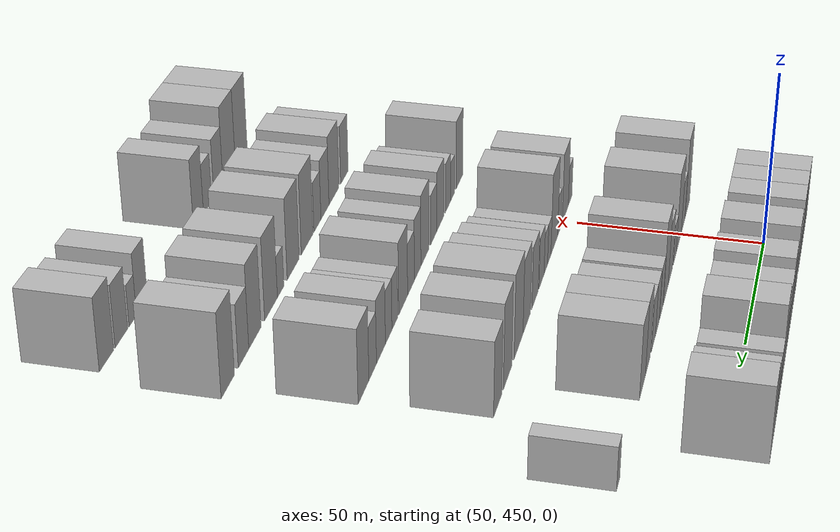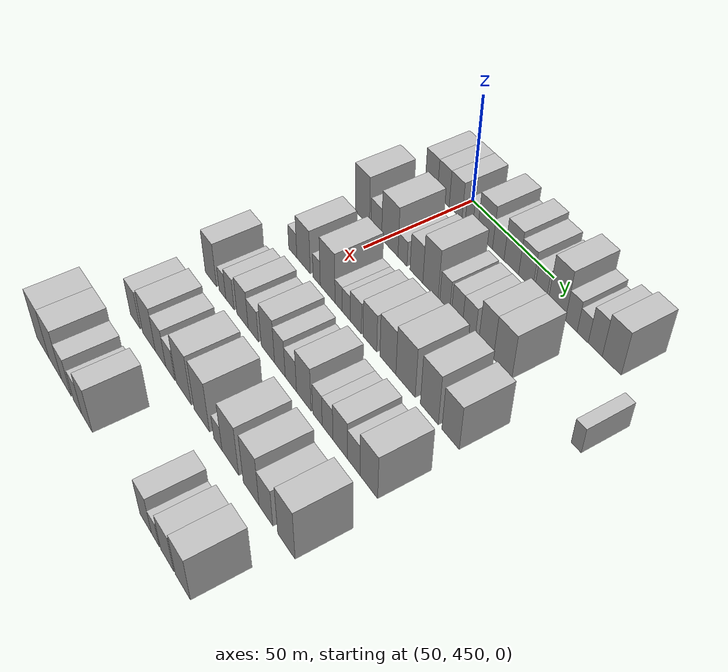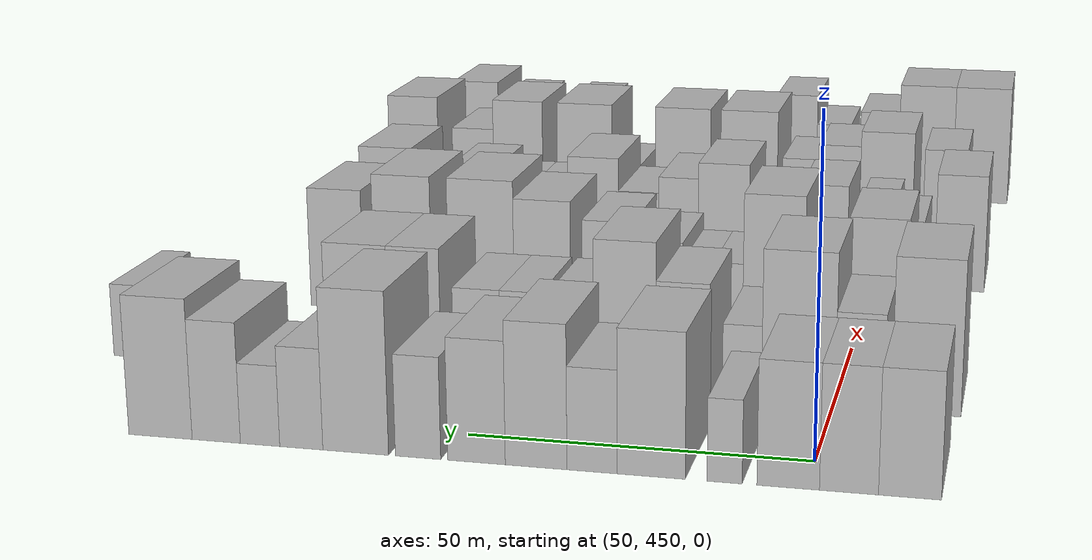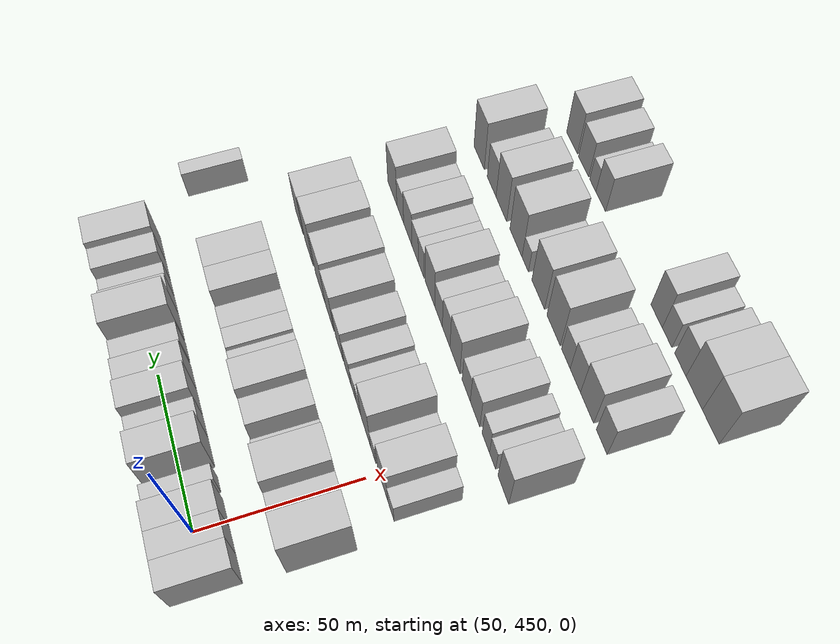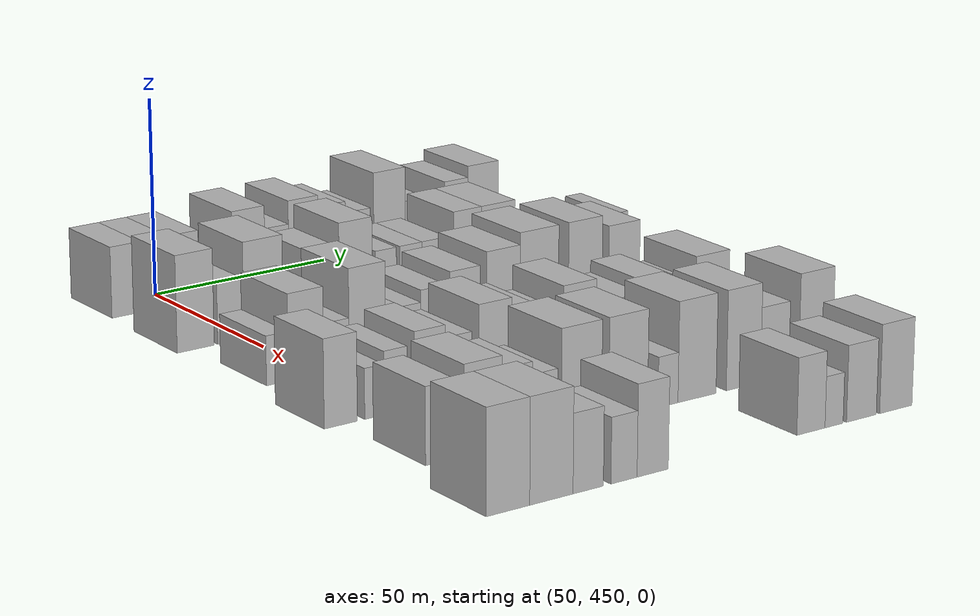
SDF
<sdf version="1.6">
 <world name="default">
  <model name="building_114">
   <static>1</static>
   <pose>50.0000 436.1076 0 0.000000 0.000000 0.000000</pose>
   <link name="link">
    <pose>0 0 9.00 0 0 0</pose>
    <collision name="collision"><geometry><box><size>20.0000 8.3401 18.0000</size></box></geometry></collision>
    <visual name="visual">
     <cast_shadows>0</cast_shadows>
     <geometry><box><size>20.0000 8.3401 18.0000</size></box></geometry>
     <material>
      <script>
       <uri>model://HANNAS_wall/materials/scripts</uri>
       <uri>model://HANNAS_wall/materials/textures</uri>
       <name>vrc/HANNAS_wall</name>
      </script>
     </material>
    </visual>
   </link>
  </model>
  <model name="building_115">
   <static>1</static>
   <pose>50.0000 444.2249 0 0.000000 0.000000 0.000000</pose>
   <link name="link">
    <pose>0 0 9.00 0 0 0</pose>
    <collision name="collision"><geometry><box><size>20.0000 7.8946 18.0000</size></box></geometry></collision>
    <visual name="visual">
     <cast_shadows>0</cast_shadows>
     <geometry><box><size>20.0000 7.8946 18.0000</size></box></geometry>
     <material>
      <script>
       <uri>model://HANNAS_wall/materials/scripts</uri>
       <uri>model://HANNAS_wall/materials/textures</uri>
       <name>vrc/HANNAS_wall</name>
      </script>
     </material>
    </visual>
   </link>
  </model>
  <model name="building_116">
   <static>1</static>
   <pose>50.0000 452.4045 0 0.000000 0.000000 0.000000</pose>
   <link name="link">
    <pose>0 0 9.00 0 0 0</pose>
    <collision name="collision"><geometry><box><size>20.0000 8.4645 18.0000</size></box></geometry></collision>
    <visual name="visual">
     <cast_shadows>0</cast_shadows>
     <geometry><box><size>20.0000 8.4645 18.0000</size></box></geometry>
     <material>
      <script>
       <uri>model://HANNAS_wall/materials/scripts</uri>
       <uri>model://HANNAS_wall/materials/textures</uri>
       <name>vrc/HANNAS_wall</name>
      </script>
     </material>
    </visual>
   </link>
  </model>
  <model name="building_117">
   <static>1</static>
   <pose>50.0000 461.0468 0 0.000000 0.000000 0.000000</pose>
   <link name="link">
    <pose>0 0 6.00 0 0 0</pose>
    <collision name="collision"><geometry><box><size>20.0000 4.8200 12.0000</size></box></geometry></collision>
    <visual name="visual">
     <cast_shadows>0</cast_shadows>
     <geometry><box><size>20.0000 4.8200 12.0000</size></box></geometry>
     <material>
      <script>
       <uri>model://HANNAS_wall/materials/scripts</uri>
       <uri>model://HANNAS_wall/materials/textures</uri>
       <name>vrc/HANNAS_wall</name>
      </script>
     </material>
    </visual>
   </link>
  </model>
  <model name="building_118">
   <static>1</static>
   <pose>50.0000 471.2063 0 0.000000 0.000000 0.000000</pose>
   <link name="link">
    <pose>0 0 10.50 0 0 0</pose>
    <collision name="collision"><geometry><box><size>20.0000 9.4991 21.0000</size></box></geometry></collision>
    <visual name="visual">
     <cast_shadows>0</cast_shadows>
     <geometry><box><size>20.0000 9.4991 21.0000</size></box></geometry>
     <material>
      <script>
       <uri>model://HANNAS_wall/materials/scripts</uri>
       <uri>model://HANNAS_wall/materials/textures</uri>
       <name>vrc/HANNAS_wall</name>
      </script>
     </material>
    </visual>
   </link>
  </model>
  <model name="building_119">
   <static>1</static>
   <pose>50.0000 479.4716 0 0.000000 0.000000 0.000000</pose>
   <link name="link">
    <pose>0 0 7.50 0 0 0</pose>
    <collision name="collision"><geometry><box><size>20.0000 7.0316 15.0000</size></box></geometry></collision>
    <visual name="visual">
     <cast_shadows>0</cast_shadows>
     <geometry><box><size>20.0000 7.0316 15.0000</size></box></geometry>
     <material>
      <script>
       <uri>model://HANNAS_wall/materials/scripts</uri>
       <uri>model://HANNAS_wall/materials/textures</uri>
       <name>vrc/HANNAS_wall</name>
      </script>
     </material>
    </visual>
   </link>
  </model>
  <model name="building_120">
   <static>1</static>
   <pose>50.0000 487.3761 0 0.000000 0.000000 0.000000</pose>
   <link name="link">
    <pose>0 0 10.50 0 0 0</pose>
    <collision name="collision"><geometry><box><size>20.0000 8.7772 21.0000</size></box></geometry></collision>
    <visual name="visual">
     <cast_shadows>0</cast_shadows>
     <geometry><box><size>20.0000 8.7772 21.0000</size></box></geometry>
     <material>
      <script>
       <uri>model://HANNAS_wall/materials/scripts</uri>
       <uri>model://HANNAS_wall/materials/textures</uri>
       <name>vrc/HANNAS_wall</name>
      </script>
     </material>
    </visual>
   </link>
  </model>
  <model name="building_121">
   <static>1</static>
   <pose>50.0000 495.9173 0 0.000000 0.000000 0.000000</pose>
   <link name="link">
    <pose>0 0 9.00 0 0 0</pose>
    <collision name="collision"><geometry><box><size>20.0000 8.3053 18.0000</size></box></geometry></collision>
    <visual name="visual">
     <cast_shadows>0</cast_shadows>
     <geometry><box><size>20.0000 8.3053 18.0000</size></box></geometry>
     <material>
      <script>
       <uri>model://HANNAS_wall/materials/scripts</uri>
       <uri>model://HANNAS_wall/materials/textures</uri>
       <name>vrc/HANNAS_wall</name>
      </script>
     </material>
    </visual>
   </link>
  </model>
  <model name="building_122">
   <static>1</static>
   <pose>50.0000 504.3802 0 0.000000 0.000000 0.000000</pose>
   <link name="link">
    <pose>0 0 7.50 0 0 0</pose>
    <collision name="collision"><geometry><box><size>20.0000 6.6206 15.0000</size></box></geometry></collision>
    <visual name="visual">
     <cast_shadows>0</cast_shadows>
     <geometry><box><size>20.0000 6.6206 15.0000</size></box></geometry>
     <material>
      <script>
       <uri>model://HANNAS_wall/materials/scripts</uri>
       <uri>model://HANNAS_wall/materials/textures</uri>
       <name>vrc/HANNAS_wall</name>
      </script>
     </material>
    </visual>
   </link>
  </model>
  <model name="building_123">
   <static>1</static>
   <pose>50.0000 513.5426 0 0.000000 0.000000 0.000000</pose>
   <link name="link">
    <pose>0 0 12.00 0 0 0</pose>
    <collision name="collision"><geometry><box><size>20.0000 9.7042 24.0000</size></box></geometry></collision>
    <visual name="visual">
     <cast_shadows>0</cast_shadows>
     <geometry><box><size>20.0000 9.7042 24.0000</size></box></geometry>
     <material>
      <script>
       <uri>model://HANNAS_wall/materials/scripts</uri>
       <uri>model://HANNAS_wall/materials/textures</uri>
       <name>vrc/HANNAS_wall</name>
      </script>
     </material>
    </visual>
   </link>
  </model>
  <model name="building_124">
   <static>1</static>
   <pose>50.0000 521.6145 0 0.000000 0.000000 0.000000</pose>
   <link name="link">
    <pose>0 0 7.50 0 0 0</pose>
    <collision name="collision"><geometry><box><size>20.0000 6.4395 15.0000</size></box></geometry></collision>
    <visual name="visual">
     <cast_shadows>0</cast_shadows>
     <geometry><box><size>20.0000 6.4395 15.0000</size></box></geometry>
     <material>
      <script>
       <uri>model://HANNAS_wall/materials/scripts</uri>
       <uri>model://HANNAS_wall/materials/textures</uri>
       <name>vrc/HANNAS_wall</name>
      </script>
     </material>
    </visual>
   </link>
  </model>
  <model name="building_125">
   <static>1</static>
   <pose>50.0000 527.8035 0 0.000000 0.000000 0.000000</pose>
   <link name="link">
    <pose>0 0 6.00 0 0 0</pose>
    <collision name="collision"><geometry><box><size>20.0000 5.9385 12.0000</size></box></geometry></collision>
    <visual name="visual">
     <cast_shadows>0</cast_shadows>
     <geometry><box><size>20.0000 5.9385 12.0000</size></box></geometry>
     <material>
      <script>
       <uri>model://HANNAS_wall/materials/scripts</uri>
       <uri>model://HANNAS_wall/materials/textures</uri>
       <name>vrc/HANNAS_wall</name>
      </script>
     </material>
    </visual>
   </link>
  </model>
  <model name="building_126">
   <static>1</static>
   <pose>50.0000 534.4407 0 0.000000 0.000000 0.000000</pose>
   <link name="link">
    <pose>0 0 9.00 0 0 0</pose>
    <collision name="collision"><geometry><box><size>20.0000 7.3359 18.0000</size></box></geometry></collision>
    <visual name="visual">
     <cast_shadows>0</cast_shadows>
     <geometry><box><size>20.0000 7.3359 18.0000</size></box></geometry>
     <material>
      <script>
       <uri>model://HANNAS_wall/materials/scripts</uri>
       <uri>model://HANNAS_wall/materials/textures</uri>
       <name>vrc/HANNAS_wall</name>
      </script>
     </material>
    </visual>
   </link>
  </model>
  <model name="building_127">
   <static>1</static>
   <pose>50.0000 542.9743 0 0.000000 0.000000 0.000000</pose>
   <link name="link">
    <pose>0 0 10.50 0 0 0</pose>
    <collision name="collision"><geometry><box><size>20.0000 9.7314 21.0000</size></box></geometry></collision>
    <visual name="visual">
     <cast_shadows>0</cast_shadows>
     <geometry><box><size>20.0000 9.7314 21.0000</size></box></geometry>
     <material>
      <script>
       <uri>model://HANNAS_wall/materials/scripts</uri>
       <uri>model://HANNAS_wall/materials/textures</uri>
       <name>vrc/HANNAS_wall</name>
      </script>
     </material>
    </visual>
   </link>
  </model>
  <model name="building_240">
   <static>1</static>
   <pose>82.0000 436.1802 0 0.000000 0.000000 0.000000</pose>
   <link name="link">
    <pose>0 0 12.00 0 0 0</pose>
    <collision name="collision"><geometry><box><size>20.0000 10.2182 24.0000</size></box></geometry></collision>
    <visual name="visual">
     <cast_shadows>0</cast_shadows>
     <geometry><box><size>20.0000 10.2182 24.0000</size></box></geometry>
     <material>
      <script>
       <uri>model://HANNAS_wall/materials/scripts</uri>
       <uri>model://HANNAS_wall/materials/textures</uri>
       <name>vrc/HANNAS_wall</name>
      </script>
     </material>
    </visual>
   </link>
  </model>
  <model name="building_241">
   <static>1</static>
   <pose>82.0000 445.9723 0 0.000000 0.000000 0.000000</pose>
   <link name="link">
    <pose>0 0 7.50 0 0 0</pose>
    <collision name="collision"><geometry><box><size>20.0000 7.3659 15.0000</size></box></geometry></collision>
    <visual name="visual">
     <cast_shadows>0</cast_shadows>
     <geometry><box><size>20.0000 7.3659 15.0000</size></box></geometry>
     <material>
      <script>
       <uri>model://HANNAS_wall/materials/scripts</uri>
       <uri>model://HANNAS_wall/materials/textures</uri>
       <name>vrc/HANNAS_wall</name>
      </script>
     </material>
    </visual>
   </link>
  </model>
  <model name="building_242">
   <static>1</static>
   <pose>82.0000 455.1974 0 0.000000 0.000000 0.000000</pose>
   <link name="link">
    <pose>0 0 12.00 0 0 0</pose>
    <collision name="collision"><geometry><box><size>20.0000 11.0843 24.0000</size></box></geometry></collision>
    <visual name="visual">
     <cast_shadows>0</cast_shadows>
     <geometry><box><size>20.0000 11.0843 24.0000</size></box></geometry>
     <material>
      <script>
       <uri>model://HANNAS_wall/materials/scripts</uri>
       <uri>model://HANNAS_wall/materials/textures</uri>
       <name>vrc/HANNAS_wall</name>
      </script>
     </material>
    </visual>
   </link>
  </model>
  <model name="building_243">
   <static>1</static>
   <pose>82.0000 463.7135 0 0.000000 0.000000 0.000000</pose>
   <link name="link">
    <pose>0 0 6.00 0 0 0</pose>
    <collision name="collision"><geometry><box><size>20.0000 5.9479 12.0000</size></box></geometry></collision>
    <visual name="visual">
     <cast_shadows>0</cast_shadows>
     <geometry><box><size>20.0000 5.9479 12.0000</size></box></geometry>
     <material>
      <script>
       <uri>model://HANNAS_wall/materials/scripts</uri>
       <uri>model://HANNAS_wall/materials/textures</uri>
       <name>vrc/HANNAS_wall</name>
      </script>
     </material>
    </visual>
   </link>
  </model>
  <model name="building_244">
   <static>1</static>
   <pose>82.0000 472.8095 0 0.000000 0.000000 0.000000</pose>
   <link name="link">
    <pose>0 0 9.00 0 0 0</pose>
    <collision name="collision"><geometry><box><size>20.0000 8.2440 18.0000</size></box></geometry></collision>
    <visual name="visual">
     <cast_shadows>0</cast_shadows>
     <geometry><box><size>20.0000 8.2440 18.0000</size></box></geometry>
     <material>
      <script>
       <uri>model://HANNAS_wall/materials/scripts</uri>
       <uri>model://HANNAS_wall/materials/textures</uri>
       <name>vrc/HANNAS_wall</name>
      </script>
     </material>
    </visual>
   </link>
  </model>
  <model name="building_245">
   <static>1</static>
   <pose>82.0000 481.7457 0 0.000000 0.000000 0.000000</pose>
   <link name="link">
    <pose>0 0 12.00 0 0 0</pose>
    <collision name="collision"><geometry><box><size>20.0000 9.6285 24.0000</size></box></geometry></collision>
    <visual name="visual">
     <cast_shadows>0</cast_shadows>
     <geometry><box><size>20.0000 9.6285 24.0000</size></box></geometry>
     <material>
      <script>
       <uri>model://HANNAS_wall/materials/scripts</uri>
       <uri>model://HANNAS_wall/materials/textures</uri>
       <name>vrc/HANNAS_wall</name>
      </script>
     </material>
    </visual>
   </link>
  </model>
  <model name="building_246">
   <static>1</static>
   <pose>82.0000 490.6337 0 0.000000 0.000000 0.000000</pose>
   <link name="link">
    <pose>0 0 7.50 0 0 0</pose>
    <collision name="collision"><geometry><box><size>20.0000 6.1474 15.0000</size></box></geometry></collision>
    <visual name="visual">
     <cast_shadows>0</cast_shadows>
     <geometry><box><size>20.0000 6.1474 15.0000</size></box></geometry>
     <material>
      <script>
       <uri>model://HANNAS_wall/materials/scripts</uri>
       <uri>model://HANNAS_wall/materials/textures</uri>
       <name>vrc/HANNAS_wall</name>
      </script>
     </material>
    </visual>
   </link>
  </model>
  <model name="building_247">
   <static>1</static>
   <pose>82.0000 498.0192 0 0.000000 0.000000 0.000000</pose>
   <link name="link">
    <pose>0 0 7.50 0 0 0</pose>
    <collision name="collision"><geometry><box><size>20.0000 6.6236 15.0000</size></box></geometry></collision>
    <visual name="visual">
     <cast_shadows>0</cast_shadows>
     <geometry><box><size>20.0000 6.6236 15.0000</size></box></geometry>
     <material>
      <script>
       <uri>model://HANNAS_wall/materials/scripts</uri>
       <uri>model://HANNAS_wall/materials/textures</uri>
       <name>vrc/HANNAS_wall</name>
      </script>
     </material>
    </visual>
   </link>
  </model>
  <model name="building_248">
   <static>1</static>
   <pose>82.0000 505.0637 0 0.000000 0.000000 0.000000</pose>
   <link name="link">
    <pose>0 0 7.50 0 0 0</pose>
    <collision name="collision"><geometry><box><size>20.0000 7.4652 15.0000</size></box></geometry></collision>
    <visual name="visual">
     <cast_shadows>0</cast_shadows>
     <geometry><box><size>20.0000 7.4652 15.0000</size></box></geometry>
     <material>
      <script>
       <uri>model://HANNAS_wall/materials/scripts</uri>
       <uri>model://HANNAS_wall/materials/textures</uri>
       <name>vrc/HANNAS_wall</name>
      </script>
     </material>
    </visual>
   </link>
  </model>
  <model name="building_249">
   <static>1</static>
   <pose>82.0000 515.0377 0 0.000000 0.000000 0.000000</pose>
   <link name="link">
    <pose>0 0 10.50 0 0 0</pose>
    <collision name="collision"><geometry><box><size>20.0000 8.4828 21.0000</size></box></geometry></collision>
    <visual name="visual">
     <cast_shadows>0</cast_shadows>
     <geometry><box><size>20.0000 8.4828 21.0000</size></box></geometry>
     <material>
      <script>
       <uri>model://HANNAS_wall/materials/scripts</uri>
       <uri>model://HANNAS_wall/materials/textures</uri>
       <name>vrc/HANNAS_wall</name>
      </script>
     </material>
    </visual>
   </link>
  </model>
  <model name="building_250">
   <static>1</static>
   <pose>82.0000 524.4398 0 0.000000 0.000000 0.000000</pose>
   <link name="link">
    <pose>0 0 10.50 0 0 0</pose>
    <collision name="collision"><geometry><box><size>20.0000 10.3215 21.0000</size></box></geometry></collision>
    <visual name="visual">
     <cast_shadows>0</cast_shadows>
     <geometry><box><size>20.0000 10.3215 21.0000</size></box></geometry>
     <material>
      <script>
       <uri>model://HANNAS_wall/materials/scripts</uri>
       <uri>model://HANNAS_wall/materials/textures</uri>
       <name>vrc/HANNAS_wall</name>
      </script>
     </material>
    </visual>
   </link>
  </model>
  <model name="building_251">
   <static>1</static>
   <pose>82.0000 563.0750 0 0.000000 0.000000 0.000000</pose>
   <link name="link">
    <pose>0 0 6.00 0 0 0</pose>
    <collision name="collision"><geometry><box><size>20.0000 4.9829 12.0000</size></box></geometry></collision>
    <visual name="visual">
     <cast_shadows>0</cast_shadows>
     <geometry><box><size>20.0000 4.9829 12.0000</size></box></geometry>
     <material>
      <script>
       <uri>model://HANNAS_wall/materials/scripts</uri>
       <uri>model://HANNAS_wall/materials/textures</uri>
       <name>vrc/HANNAS_wall</name>
      </script>
     </material>
    </visual>
   </link>
  </model>
  <model name="building_360">
   <static>1</static>
   <pose>114.0000 438.6001 0 0.000000 0.000000 0.000000</pose>
   <link name="link">
    <pose>0 0 6.00 0 0 0</pose>
    <collision name="collision"><geometry><box><size>20.0000 5.9631 12.0000</size></box></geometry></collision>
    <visual name="visual">
     <cast_shadows>0</cast_shadows>
     <geometry><box><size>20.0000 5.9631 12.0000</size></box></geometry>
     <material>
      <script>
       <uri>model://HANNAS_wall/materials/scripts</uri>
       <uri>model://HANNAS_wall/materials/textures</uri>
       <name>vrc/HANNAS_wall</name>
      </script>
     </material>
    </visual>
   </link>
  </model>
  <model name="building_361">
   <static>1</static>
   <pose>114.0000 446.4407 0 0.000000 0.000000 0.000000</pose>
   <link name="link">
    <pose>0 0 10.50 0 0 0</pose>
    <collision name="collision"><geometry><box><size>20.0000 9.7181 21.0000</size></box></geometry></collision>
    <visual name="visual">
     <cast_shadows>0</cast_shadows>
     <geometry><box><size>20.0000 9.7181 21.0000</size></box></geometry>
     <material>
      <script>
       <uri>model://HANNAS_wall/materials/scripts</uri>
       <uri>model://HANNAS_wall/materials/textures</uri>
       <name>vrc/HANNAS_wall</name>
      </script>
     </material>
    </visual>
   </link>
  </model>
  <model name="building_362">
   <static>1</static>
   <pose>114.0000 455.8432 0 0.000000 0.000000 0.000000</pose>
   <link name="link">
    <pose>0 0 6.00 0 0 0</pose>
    <collision name="collision"><geometry><box><size>20.0000 5.0868 12.0000</size></box></geometry></collision>
    <visual name="visual">
     <cast_shadows>0</cast_shadows>
     <geometry><box><size>20.0000 5.0868 12.0000</size></box></geometry>
     <material>
      <script>
       <uri>model://HANNAS_wall/materials/scripts</uri>
       <uri>model://HANNAS_wall/materials/textures</uri>
       <name>vrc/HANNAS_wall</name>
      </script>
     </material>
    </visual>
   </link>
  </model>
  <model name="building_363">
   <static>1</static>
   <pose>114.0000 463.4853 0 0.000000 0.000000 0.000000</pose>
   <link name="link">
    <pose>0 0 12.00 0 0 0</pose>
    <collision name="collision"><geometry><box><size>20.0000 10.1976 24.0000</size></box></geometry></collision>
    <visual name="visual">
     <cast_shadows>0</cast_shadows>
     <geometry><box><size>20.0000 10.1976 24.0000</size></box></geometry>
     <material>
      <script>
       <uri>model://HANNAS_wall/materials/scripts</uri>
       <uri>model://HANNAS_wall/materials/textures</uri>
       <name>vrc/HANNAS_wall</name>
      </script>
     </material>
    </visual>
   </link>
  </model>
  <model name="building_364">
   <static>1</static>
   <pose>114.0000 471.0668 0 0.000000 0.000000 0.000000</pose>
   <link name="link">
    <pose>0 0 6.00 0 0 0</pose>
    <collision name="collision"><geometry><box><size>20.0000 4.9654 12.0000</size></box></geometry></collision>
    <visual name="visual">
     <cast_shadows>0</cast_shadows>
     <geometry><box><size>20.0000 4.9654 12.0000</size></box></geometry>
     <material>
      <script>
       <uri>model://HANNAS_wall/materials/scripts</uri>
       <uri>model://HANNAS_wall/materials/textures</uri>
       <name>vrc/HANNAS_wall</name>
      </script>
     </material>
    </visual>
   </link>
  </model>
  <model name="building_365">
   <static>1</static>
   <pose>114.0000 476.1426 0 0.000000 0.000000 0.000000</pose>
   <link name="link">
    <pose>0 0 6.00 0 0 0</pose>
    <collision name="collision"><geometry><box><size>20.0000 5.1861 12.0000</size></box></geometry></collision>
    <visual name="visual">
     <cast_shadows>0</cast_shadows>
     <geometry><box><size>20.0000 5.1861 12.0000</size></box></geometry>
     <material>
      <script>
       <uri>model://HANNAS_wall/materials/scripts</uri>
       <uri>model://HANNAS_wall/materials/textures</uri>
       <name>vrc/HANNAS_wall</name>
      </script>
     </material>
    </visual>
   </link>
  </model>
  <model name="building_366">
   <static>1</static>
   <pose>114.0000 482.4402 0 0.000000 0.000000 0.000000</pose>
   <link name="link">
    <pose>0 0 7.50 0 0 0</pose>
    <collision name="collision"><geometry><box><size>20.0000 7.4092 15.0000</size></box></geometry></collision>
    <visual name="visual">
     <cast_shadows>0</cast_shadows>
     <geometry><box><size>20.0000 7.4092 15.0000</size></box></geometry>
     <material>
      <script>
       <uri>model://HANNAS_wall/materials/scripts</uri>
       <uri>model://HANNAS_wall/materials/textures</uri>
       <name>vrc/HANNAS_wall</name>
      </script>
     </material>
    </visual>
   </link>
  </model>
  <model name="building_367">
   <static>1</static>
   <pose>114.0000 491.4955 0 0.000000 0.000000 0.000000</pose>
   <link name="link">
    <pose>0 0 9.00 0 0 0</pose>
    <collision name="collision"><geometry><box><size>20.0000 8.7014 18.0000</size></box></geometry></collision>
    <visual name="visual">
     <cast_shadows>0</cast_shadows>
     <geometry><box><size>20.0000 8.7014 18.0000</size></box></geometry>
     <material>
      <script>
       <uri>model://HANNAS_wall/materials/scripts</uri>
       <uri>model://HANNAS_wall/materials/textures</uri>
       <name>vrc/HANNAS_wall</name>
      </script>
     </material>
    </visual>
   </link>
  </model>
  <model name="building_368">
   <static>1</static>
   <pose>114.0000 502.7782 0 0.000000 0.000000 0.000000</pose>
   <link name="link">
    <pose>0 0 10.50 0 0 0</pose>
    <collision name="collision"><geometry><box><size>20.0000 9.8640 21.0000</size></box></geometry></collision>
    <visual name="visual">
     <cast_shadows>0</cast_shadows>
     <geometry><box><size>20.0000 9.8640 21.0000</size></box></geometry>
     <material>
      <script>
       <uri>model://HANNAS_wall/materials/scripts</uri>
       <uri>model://HANNAS_wall/materials/textures</uri>
       <name>vrc/HANNAS_wall</name>
      </script>
     </material>
    </visual>
   </link>
  </model>
  <model name="building_369">
   <static>1</static>
   <pose>114.0000 513.4729 0 0.000000 0.000000 0.000000</pose>
   <link name="link">
    <pose>0 0 12.00 0 0 0</pose>
    <collision name="collision"><geometry><box><size>20.0000 11.5252 24.0000</size></box></geometry></collision>
    <visual name="visual">
     <cast_shadows>0</cast_shadows>
     <geometry><box><size>20.0000 11.5252 24.0000</size></box></geometry>
     <material>
      <script>
       <uri>model://HANNAS_wall/materials/scripts</uri>
       <uri>model://HANNAS_wall/materials/textures</uri>
       <name>vrc/HANNAS_wall</name>
      </script>
     </material>
    </visual>
   </link>
  </model>
  <model name="building_370">
   <static>1</static>
   <pose>114.0000 527.3762 0 0.000000 0.000000 0.000000</pose>
   <link name="link">
    <pose>0 0 12.00 0 0 0</pose>
    <collision name="collision"><geometry><box><size>20.0000 10.2814 24.0000</size></box></geometry></collision>
    <visual name="visual">
     <cast_shadows>0</cast_shadows>
     <geometry><box><size>20.0000 10.2814 24.0000</size></box></geometry>
     <material>
      <script>
       <uri>model://HANNAS_wall/materials/scripts</uri>
       <uri>model://HANNAS_wall/materials/textures</uri>
       <name>vrc/HANNAS_wall</name>
      </script>
     </material>
    </visual>
   </link>
  </model>
  <model name="building_371">
   <static>1</static>
   <pose>114.0000 539.3210 0 0.000000 0.000000 0.000000</pose>
   <link name="link">
    <pose>0 0 10.50 0 0 0</pose>
    <collision name="collision"><geometry><box><size>20.0000 9.6083 21.0000</size></box></geometry></collision>
    <visual name="visual">
     <cast_shadows>0</cast_shadows>
     <geometry><box><size>20.0000 9.6083 21.0000</size></box></geometry>
     <material>
      <script>
       <uri>model://HANNAS_wall/materials/scripts</uri>
       <uri>model://HANNAS_wall/materials/textures</uri>
       <name>vrc/HANNAS_wall</name>
      </script>
     </material>
    </visual>
   </link>
  </model>
  <model name="building_478">
   <static>1</static>
   <pose>146.0000 434.7686 0 0.000000 0.000000 0.000000</pose>
   <link name="link">
    <pose>0 0 10.50 0 0 0</pose>
    <collision name="collision"><geometry><box><size>20.0000 8.8087 21.0000</size></box></geometry></collision>
    <visual name="visual">
     <cast_shadows>0</cast_shadows>
     <geometry><box><size>20.0000 8.8087 21.0000</size></box></geometry>
     <material>
      <script>
       <uri>model://HANNAS_wall/materials/scripts</uri>
       <uri>model://HANNAS_wall/materials/textures</uri>
       <name>vrc/HANNAS_wall</name>
      </script>
     </material>
    </visual>
   </link>
  </model>
  <model name="building_479">
   <static>1</static>
   <pose>146.0000 443.7629 0 0.000000 0.000000 0.000000</pose>
   <link name="link">
    <pose>0 0 6.00 0 0 0</pose>
    <collision name="collision"><geometry><box><size>20.0000 5.1798 12.0000</size></box></geometry></collision>
    <visual name="visual">
     <cast_shadows>0</cast_shadows>
     <geometry><box><size>20.0000 5.1798 12.0000</size></box></geometry>
     <material>
      <script>
       <uri>model://HANNAS_wall/materials/scripts</uri>
       <uri>model://HANNAS_wall/materials/textures</uri>
       <name>vrc/HANNAS_wall</name>
      </script>
     </material>
    </visual>
   </link>
  </model>
  <model name="building_480">
   <static>1</static>
   <pose>146.0000 449.5185 0 0.000000 0.000000 0.000000</pose>
   <link name="link">
    <pose>0 0 7.50 0 0 0</pose>
    <collision name="collision"><geometry><box><size>20.0000 6.3314 15.0000</size></box></geometry></collision>
    <visual name="visual">
     <cast_shadows>0</cast_shadows>
     <geometry><box><size>20.0000 6.3314 15.0000</size></box></geometry>
     <material>
      <script>
       <uri>model://HANNAS_wall/materials/scripts</uri>
       <uri>model://HANNAS_wall/materials/textures</uri>
       <name>vrc/HANNAS_wall</name>
      </script>
     </material>
    </visual>
   </link>
  </model>
  <model name="building_481">
   <static>1</static>
   <pose>146.0000 458.8901 0 0.000000 0.000000 0.000000</pose>
   <link name="link">
    <pose>0 0 9.00 0 0 0</pose>
    <collision name="collision"><geometry><box><size>20.0000 8.4117 18.0000</size></box></geometry></collision>
    <visual name="visual">
     <cast_shadows>0</cast_shadows>
     <geometry><box><size>20.0000 8.4117 18.0000</size></box></geometry>
     <material>
      <script>
       <uri>model://HANNAS_wall/materials/scripts</uri>
       <uri>model://HANNAS_wall/materials/textures</uri>
       <name>vrc/HANNAS_wall</name>
      </script>
     </material>
    </visual>
   </link>
  </model>
  <model name="building_482">
   <static>1</static>
   <pose>146.0000 466.7964 0 0.000000 0.000000 0.000000</pose>
   <link name="link">
    <pose>0 0 7.50 0 0 0</pose>
    <collision name="collision"><geometry><box><size>20.0000 7.4009 15.0000</size></box></geometry></collision>
    <visual name="visual">
     <cast_shadows>0</cast_shadows>
     <geometry><box><size>20.0000 7.4009 15.0000</size></box></geometry>
     <material>
      <script>
       <uri>model://HANNAS_wall/materials/scripts</uri>
       <uri>model://HANNAS_wall/materials/textures</uri>
       <name>vrc/HANNAS_wall</name>
      </script>
     </material>
    </visual>
   </link>
  </model>
  <model name="building_483">
   <static>1</static>
   <pose>146.0000 477.1403 0 0.000000 0.000000 0.000000</pose>
   <link name="link">
    <pose>0 0 10.50 0 0 0</pose>
    <collision name="collision"><geometry><box><size>20.0000 9.2870 21.0000</size></box></geometry></collision>
    <visual name="visual">
     <cast_shadows>0</cast_shadows>
     <geometry><box><size>20.0000 9.2870 21.0000</size></box></geometry>
     <material>
      <script>
       <uri>model://HANNAS_wall/materials/scripts</uri>
       <uri>model://HANNAS_wall/materials/textures</uri>
       <name>vrc/HANNAS_wall</name>
      </script>
     </material>
    </visual>
   </link>
  </model>
  <model name="building_484">
   <static>1</static>
   <pose>146.0000 485.4221 0 0.000000 0.000000 0.000000</pose>
   <link name="link">
    <pose>0 0 9.00 0 0 0</pose>
    <collision name="collision"><geometry><box><size>20.0000 7.2765 18.0000</size></box></geometry></collision>
    <visual name="visual">
     <cast_shadows>0</cast_shadows>
     <geometry><box><size>20.0000 7.2765 18.0000</size></box></geometry>
     <material>
      <script>
       <uri>model://HANNAS_wall/materials/scripts</uri>
       <uri>model://HANNAS_wall/materials/textures</uri>
       <name>vrc/HANNAS_wall</name>
      </script>
     </material>
    </visual>
   </link>
  </model>
  <model name="building_485">
   <static>1</static>
   <pose>146.0000 492.8030 0 0.000000 0.000000 0.000000</pose>
   <link name="link">
    <pose>0 0 7.50 0 0 0</pose>
    <collision name="collision"><geometry><box><size>20.0000 7.4853 15.0000</size></box></geometry></collision>
    <visual name="visual">
     <cast_shadows>0</cast_shadows>
     <geometry><box><size>20.0000 7.4853 15.0000</size></box></geometry>
     <material>
      <script>
       <uri>model://HANNAS_wall/materials/scripts</uri>
       <uri>model://HANNAS_wall/materials/textures</uri>
       <name>vrc/HANNAS_wall</name>
      </script>
     </material>
    </visual>
   </link>
  </model>
  <model name="building_486">
   <static>1</static>
   <pose>146.0000 501.3061 0 0.000000 0.000000 0.000000</pose>
   <link name="link">
    <pose>0 0 10.50 0 0 0</pose>
    <collision name="collision"><geometry><box><size>20.0000 9.5208 21.0000</size></box></geometry></collision>
    <visual name="visual">
     <cast_shadows>0</cast_shadows>
     <geometry><box><size>20.0000 9.5208 21.0000</size></box></geometry>
     <material>
      <script>
       <uri>model://HANNAS_wall/materials/scripts</uri>
       <uri>model://HANNAS_wall/materials/textures</uri>
       <name>vrc/HANNAS_wall</name>
      </script>
     </material>
    </visual>
   </link>
  </model>
  <model name="building_487">
   <static>1</static>
   <pose>146.0000 510.0685 0 0.000000 0.000000 0.000000</pose>
   <link name="link">
    <pose>0 0 7.50 0 0 0</pose>
    <collision name="collision"><geometry><box><size>20.0000 6.0040 15.0000</size></box></geometry></collision>
    <visual name="visual">
     <cast_shadows>0</cast_shadows>
     <geometry><box><size>20.0000 6.0040 15.0000</size></box></geometry>
     <material>
      <script>
       <uri>model://HANNAS_wall/materials/scripts</uri>
       <uri>model://HANNAS_wall/materials/textures</uri>
       <name>vrc/HANNAS_wall</name>
      </script>
     </material>
    </visual>
   </link>
  </model>
  <model name="building_488">
   <static>1</static>
   <pose>146.0000 516.3818 0 0.000000 0.000000 0.000000</pose>
   <link name="link">
    <pose>0 0 7.50 0 0 0</pose>
    <collision name="collision"><geometry><box><size>20.0000 6.6227 15.0000</size></box></geometry></collision>
    <visual name="visual">
     <cast_shadows>0</cast_shadows>
     <geometry><box><size>20.0000 6.6227 15.0000</size></box></geometry>
     <material>
      <script>
       <uri>model://HANNAS_wall/materials/scripts</uri>
       <uri>model://HANNAS_wall/materials/textures</uri>
       <name>vrc/HANNAS_wall</name>
      </script>
     </material>
    </visual>
   </link>
  </model>
  <model name="building_489">
   <static>1</static>
   <pose>146.0000 524.1164 0 0.000000 0.000000 0.000000</pose>
   <link name="link">
    <pose>0 0 9.00 0 0 0</pose>
    <collision name="collision"><geometry><box><size>20.0000 8.8463 18.0000</size></box></geometry></collision>
    <visual name="visual">
     <cast_shadows>0</cast_shadows>
     <geometry><box><size>20.0000 8.8463 18.0000</size></box></geometry>
     <material>
      <script>
       <uri>model://HANNAS_wall/materials/scripts</uri>
       <uri>model://HANNAS_wall/materials/textures</uri>
       <name>vrc/HANNAS_wall</name>
      </script>
     </material>
    </visual>
   </link>
  </model>
  <model name="building_490">
   <static>1</static>
   <pose>146.0000 532.1939 0 0.000000 0.000000 0.000000</pose>
   <link name="link">
    <pose>0 0 7.50 0 0 0</pose>
    <collision name="collision"><geometry><box><size>20.0000 7.3087 15.0000</size></box></geometry></collision>
    <visual name="visual">
     <cast_shadows>0</cast_shadows>
     <geometry><box><size>20.0000 7.3087 15.0000</size></box></geometry>
     <material>
      <script>
       <uri>model://HANNAS_wall/materials/scripts</uri>
       <uri>model://HANNAS_wall/materials/textures</uri>
       <name>vrc/HANNAS_wall</name>
      </script>
     </material>
    </visual>
   </link>
  </model>
  <model name="building_491">
   <static>1</static>
   <pose>146.0000 540.9283 0 0.000000 0.000000 0.000000</pose>
   <link name="link">
    <pose>0 0 10.50 0 0 0</pose>
    <collision name="collision"><geometry><box><size>20.0000 10.1601 21.0000</size></box></geometry></collision>
    <visual name="visual">
     <cast_shadows>0</cast_shadows>
     <geometry><box><size>20.0000 10.1601 21.0000</size></box></geometry>
     <material>
      <script>
       <uri>model://HANNAS_wall/materials/scripts</uri>
       <uri>model://HANNAS_wall/materials/textures</uri>
       <name>vrc/HANNAS_wall</name>
      </script>
     </material>
    </visual>
   </link>
  </model>
  <model name="building_601">
   <static>1</static>
   <pose>178.0000 439.4099 0 0.000000 0.000000 0.000000</pose>
   <link name="link">
    <pose>0 0 9.00 0 0 0</pose>
    <collision name="collision"><geometry><box><size>20.0000 8.1036 18.0000</size></box></geometry></collision>
    <visual name="visual">
     <cast_shadows>0</cast_shadows>
     <geometry><box><size>20.0000 8.1036 18.0000</size></box></geometry>
     <material>
      <script>
       <uri>model://HANNAS_wall/materials/scripts</uri>
       <uri>model://HANNAS_wall/materials/textures</uri>
       <name>vrc/HANNAS_wall</name>
      </script>
     </material>
    </visual>
   </link>
  </model>
  <model name="building_602">
   <static>1</static>
   <pose>178.0000 450.5734 0 0.000000 0.000000 0.000000</pose>
   <link name="link">
    <pose>0 0 10.50 0 0 0</pose>
    <collision name="collision"><geometry><box><size>20.0000 10.2234 21.0000</size></box></geometry></collision>
    <visual name="visual">
     <cast_shadows>0</cast_shadows>
     <geometry><box><size>20.0000 10.2234 21.0000</size></box></geometry>
     <material>
      <script>
       <uri>model://HANNAS_wall/materials/scripts</uri>
       <uri>model://HANNAS_wall/materials/textures</uri>
       <name>vrc/HANNAS_wall</name>
      </script>
     </material>
    </visual>
   </link>
  </model>
  <model name="building_603">
   <static>1</static>
   <pose>178.0000 459.7691 0 0.000000 0.000000 0.000000</pose>
   <link name="link">
    <pose>0 0 9.00 0 0 0</pose>
    <collision name="collision"><geometry><box><size>20.0000 8.1680 18.0000</size></box></geometry></collision>
    <visual name="visual">
     <cast_shadows>0</cast_shadows>
     <geometry><box><size>20.0000 8.1680 18.0000</size></box></geometry>
     <material>
      <script>
       <uri>model://HANNAS_wall/materials/scripts</uri>
       <uri>model://HANNAS_wall/materials/textures</uri>
       <name>vrc/HANNAS_wall</name>
      </script>
     </material>
    </visual>
   </link>
  </model>
  <model name="building_604">
   <static>1</static>
   <pose>178.0000 467.3581 0 0.000000 0.000000 0.000000</pose>
   <link name="link">
    <pose>0 0 7.50 0 0 0</pose>
    <collision name="collision"><geometry><box><size>20.0000 7.0100 15.0000</size></box></geometry></collision>
    <visual name="visual">
     <cast_shadows>0</cast_shadows>
     <geometry><box><size>20.0000 7.0100 15.0000</size></box></geometry>
     <material>
      <script>
       <uri>model://HANNAS_wall/materials/scripts</uri>
       <uri>model://HANNAS_wall/materials/textures</uri>
       <name>vrc/HANNAS_wall</name>
      </script>
     </material>
    </visual>
   </link>
  </model>
  <model name="building_605">
   <static>1</static>
   <pose>178.0000 477.4621 0 0.000000 0.000000 0.000000</pose>
   <link name="link">
    <pose>0 0 12.00 0 0 0</pose>
    <collision name="collision"><geometry><box><size>20.0000 11.1980 24.0000</size></box></geometry></collision>
    <visual name="visual">
     <cast_shadows>0</cast_shadows>
     <geometry><box><size>20.0000 11.1980 24.0000</size></box></geometry>
     <material>
      <script>
       <uri>model://HANNAS_wall/materials/scripts</uri>
       <uri>model://HANNAS_wall/materials/textures</uri>
       <name>vrc/HANNAS_wall</name>
      </script>
     </material>
    </visual>
   </link>
  </model>
  <model name="building_606">
   <static>1</static>
   <pose>178.0000 490.5800 0 0.000000 0.000000 0.000000</pose>
   <link name="link">
    <pose>0 0 12.00 0 0 0</pose>
    <collision name="collision"><geometry><box><size>20.0000 11.0379 24.0000</size></box></geometry></collision>
    <visual name="visual">
     <cast_shadows>0</cast_shadows>
     <geometry><box><size>20.0000 11.0379 24.0000</size></box></geometry>
     <material>
      <script>
       <uri>model://HANNAS_wall/materials/scripts</uri>
       <uri>model://HANNAS_wall/materials/textures</uri>
       <name>vrc/HANNAS_wall</name>
      </script>
     </material>
    </visual>
   </link>
  </model>
  <model name="building_607">
   <static>1</static>
   <pose>178.0000 501.9704 0 0.000000 0.000000 0.000000</pose>
   <link name="link">
    <pose>0 0 6.00 0 0 0</pose>
    <collision name="collision"><geometry><box><size>20.0000 5.7429 12.0000</size></box></geometry></collision>
    <visual name="visual">
     <cast_shadows>0</cast_shadows>
     <geometry><box><size>20.0000 5.7429 12.0000</size></box></geometry>
     <material>
      <script>
       <uri>model://HANNAS_wall/materials/scripts</uri>
       <uri>model://HANNAS_wall/materials/textures</uri>
       <name>vrc/HANNAS_wall</name>
      </script>
     </material>
    </visual>
   </link>
  </model>
  <model name="building_608">
   <static>1</static>
   <pose>178.0000 510.4004 0 0.000000 0.000000 0.000000</pose>
   <link name="link">
    <pose>0 0 12.00 0 0 0</pose>
    <collision name="collision"><geometry><box><size>20.0000 11.1170 24.0000</size></box></geometry></collision>
    <visual name="visual">
     <cast_shadows>0</cast_shadows>
     <geometry><box><size>20.0000 11.1170 24.0000</size></box></geometry>
     <material>
      <script>
       <uri>model://HANNAS_wall/materials/scripts</uri>
       <uri>model://HANNAS_wall/materials/textures</uri>
       <name>vrc/HANNAS_wall</name>
      </script>
     </material>
    </visual>
   </link>
  </model>
  <model name="building_609">
   <static>1</static>
   <pose>178.0000 524.0377 0 0.000000 0.000000 0.000000</pose>
   <link name="link">
    <pose>0 0 12.00 0 0 0</pose>
    <collision name="collision"><geometry><box><size>20.0000 10.1577 24.0000</size></box></geometry></collision>
    <visual name="visual">
     <cast_shadows>0</cast_shadows>
     <geometry><box><size>20.0000 10.1577 24.0000</size></box></geometry>
     <material>
      <script>
       <uri>model://HANNAS_wall/materials/scripts</uri>
       <uri>model://HANNAS_wall/materials/textures</uri>
       <name>vrc/HANNAS_wall</name>
      </script>
     </material>
    </visual>
   </link>
  </model>
  <model name="building_610">
   <static>1</static>
   <pose>178.0000 533.3643 0 0.000000 0.000000 0.000000</pose>
   <link name="link">
    <pose>0 0 9.00 0 0 0</pose>
    <collision name="collision"><geometry><box><size>20.0000 8.4954 18.0000</size></box></geometry></collision>
    <visual name="visual">
     <cast_shadows>0</cast_shadows>
     <geometry><box><size>20.0000 8.4954 18.0000</size></box></geometry>
     <material>
      <script>
       <uri>model://HANNAS_wall/materials/scripts</uri>
       <uri>model://HANNAS_wall/materials/textures</uri>
       <name>vrc/HANNAS_wall</name>
      </script>
     </material>
    </visual>
   </link>
  </model>
  <model name="building_611">
   <static>1</static>
   <pose>178.0000 545.7793 0 0.000000 0.000000 0.000000</pose>
   <link name="link">
    <pose>0 0 12.00 0 0 0</pose>
    <collision name="collision"><geometry><box><size>20.0000 10.3346 24.0000</size></box></geometry></collision>
    <visual name="visual">
     <cast_shadows>0</cast_shadows>
     <geometry><box><size>20.0000 10.3346 24.0000</size></box></geometry>
     <material>
      <script>
       <uri>model://HANNAS_wall/materials/scripts</uri>
       <uri>model://HANNAS_wall/materials/textures</uri>
       <name>vrc/HANNAS_wall</name>
      </script>
     </material>
    </visual>
   </link>
  </model>
  <model name="building_709">
   <static>1</static>
   <pose>210.0000 433.8937 0 0.000000 0.000000 0.000000</pose>
   <link name="link">
    <pose>0 0 12.00 0 0 0</pose>
    <collision name="collision"><geometry><box><size>20.0000 11.1968 24.0000</size></box></geometry></collision>
    <visual name="visual">
     <cast_shadows>0</cast_shadows>
     <geometry><box><size>20.0000 11.1968 24.0000</size></box></geometry>
     <material>
      <script>
       <uri>model://HANNAS_wall/materials/scripts</uri>
       <uri>model://HANNAS_wall/materials/textures</uri>
       <name>vrc/HANNAS_wall</name>
      </script>
     </material>
    </visual>
   </link>
  </model>
  <model name="building_710">
   <static>1</static>
   <pose>210.0000 445.1565 0 0.000000 0.000000 0.000000</pose>
   <link name="link">
    <pose>0 0 12.00 0 0 0</pose>
    <collision name="collision"><geometry><box><size>20.0000 11.3287 24.0000</size></box></geometry></collision>
    <visual name="visual">
     <cast_shadows>0</cast_shadows>
     <geometry><box><size>20.0000 11.3287 24.0000</size></box></geometry>
     <material>
      <script>
       <uri>model://HANNAS_wall/materials/scripts</uri>
       <uri>model://HANNAS_wall/materials/textures</uri>
       <name>vrc/HANNAS_wall</name>
      </script>
     </material>
    </visual>
   </link>
  </model>
  <model name="building_711">
   <static>1</static>
   <pose>210.0000 454.8505 0 0.000000 0.000000 0.000000</pose>
   <link name="link">
    <pose>0 0 9.00 0 0 0</pose>
    <collision name="collision"><geometry><box><size>20.0000 8.0593 18.0000</size></box></geometry></collision>
    <visual name="visual">
     <cast_shadows>0</cast_shadows>
     <geometry><box><size>20.0000 8.0593 18.0000</size></box></geometry>
     <material>
      <script>
       <uri>model://HANNAS_wall/materials/scripts</uri>
       <uri>model://HANNAS_wall/materials/textures</uri>
       <name>vrc/HANNAS_wall</name>
      </script>
     </material>
    </visual>
   </link>
  </model>
  <model name="building_712">
   <static>1</static>
   <pose>210.0000 464.4039 0 0.000000 0.000000 0.000000</pose>
   <link name="link">
    <pose>0 0 7.50 0 0 0</pose>
    <collision name="collision"><geometry><box><size>20.0000 7.0475 15.0000</size></box></geometry></collision>
    <visual name="visual">
     <cast_shadows>0</cast_shadows>
     <geometry><box><size>20.0000 7.0475 15.0000</size></box></geometry>
     <material>
      <script>
       <uri>model://HANNAS_wall/materials/scripts</uri>
       <uri>model://HANNAS_wall/materials/textures</uri>
       <name>vrc/HANNAS_wall</name>
      </script>
     </material>
    </visual>
   </link>
  </model>
  <model name="building_713">
   <static>1</static>
   <pose>210.0000 472.1776 0 0.000000 0.000000 0.000000</pose>
   <link name="link">
    <pose>0 0 10.50 0 0 0</pose>
    <collision name="collision"><geometry><box><size>20.0000 8.4999 21.0000</size></box></geometry></collision>
    <visual name="visual">
     <cast_shadows>0</cast_shadows>
     <geometry><box><size>20.0000 8.4999 21.0000</size></box></geometry>
     <material>
      <script>
       <uri>model://HANNAS_wall/materials/scripts</uri>
       <uri>model://HANNAS_wall/materials/textures</uri>
       <name>vrc/HANNAS_wall</name>
      </script>
     </material>
    </visual>
   </link>
  </model>
  <model name="building_714">
   <static>1</static>
   <pose>210.0000 516.6964 0 0.000000 0.000000 0.000000</pose>
   <link name="link">
    <pose>0 0 9.00 0 0 0</pose>
    <collision name="collision"><geometry><box><size>20.0000 8.1792 18.0000</size></box></geometry></collision>
    <visual name="visual">
     <cast_shadows>0</cast_shadows>
     <geometry><box><size>20.0000 8.1792 18.0000</size></box></geometry>
     <material>
      <script>
       <uri>model://HANNAS_wall/materials/scripts</uri>
       <uri>model://HANNAS_wall/materials/textures</uri>
       <name>vrc/HANNAS_wall</name>
      </script>
     </material>
    </visual>
   </link>
  </model>
  <model name="building_715">
   <static>1</static>
   <pose>210.0000 523.4435 0 0.000000 0.000000 0.000000</pose>
   <link name="link">
    <pose>0 0 6.00 0 0 0</pose>
    <collision name="collision"><geometry><box><size>20.0000 5.3151 12.0000</size></box></geometry></collision>
    <visual name="visual">
     <cast_shadows>0</cast_shadows>
     <geometry><box><size>20.0000 5.3151 12.0000</size></box></geometry>
     <material>
      <script>
       <uri>model://HANNAS_wall/materials/scripts</uri>
       <uri>model://HANNAS_wall/materials/textures</uri>
       <name>vrc/HANNAS_wall</name>
      </script>
     </material>
    </visual>
   </link>
  </model>
  <model name="building_716">
   <static>1</static>
   <pose>210.0000 531.5230 0 0.000000 0.000000 0.000000</pose>
   <link name="link">
    <pose>0 0 9.00 0 0 0</pose>
    <collision name="collision"><geometry><box><size>20.0000 8.8438 18.0000</size></box></geometry></collision>
    <visual name="visual">
     <cast_shadows>0</cast_shadows>
     <geometry><box><size>20.0000 8.8438 18.0000</size></box></geometry>
     <material>
      <script>
       <uri>model://HANNAS_wall/materials/scripts</uri>
       <uri>model://HANNAS_wall/materials/textures</uri>
       <name>vrc/HANNAS_wall</name>
      </script>
     </material>
    </visual>
   </link>
  </model>
  <model name="building_717">
   <static>1</static>
   <pose>210.0000 541.8104 0 0.000000 0.000000 0.000000</pose>
   <link name="link">
    <pose>0 0 10.50 0 0 0</pose>
    <collision name="collision"><geometry><box><size>20.0000 9.7310 21.0000</size></box></geometry></collision>
    <visual name="visual">
     <cast_shadows>0</cast_shadows>
     <geometry><box><size>20.0000 9.7310 21.0000</size></box></geometry>
     <material>
      <script>
       <uri>model://HANNAS_wall/materials/scripts</uri>
       <uri>model://HANNAS_wall/materials/textures</uri>
       <name>vrc/HANNAS_wall</name>
      </script>
     </material>
    </visual>
   </link>
  </model>
 </world>
</sdf>
